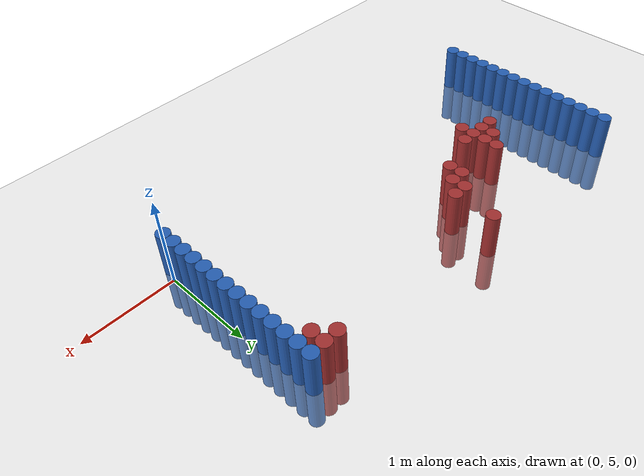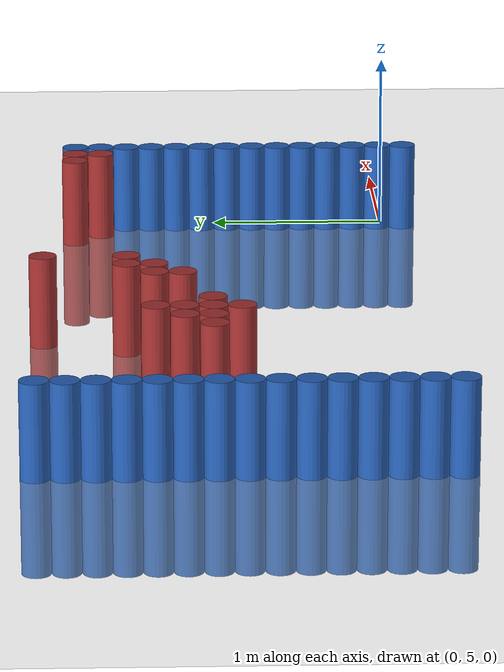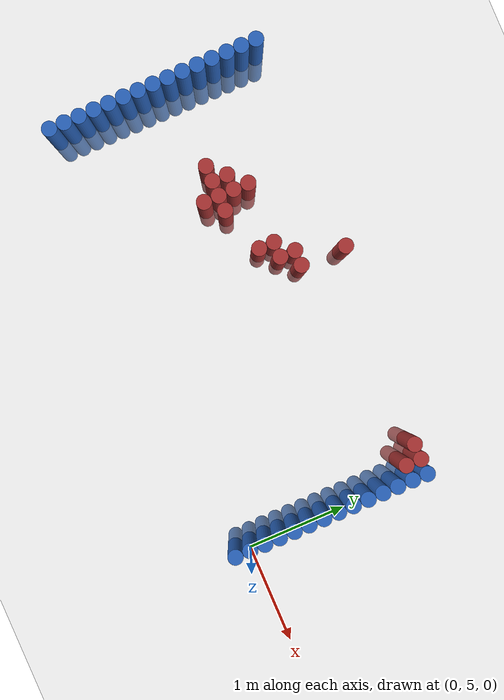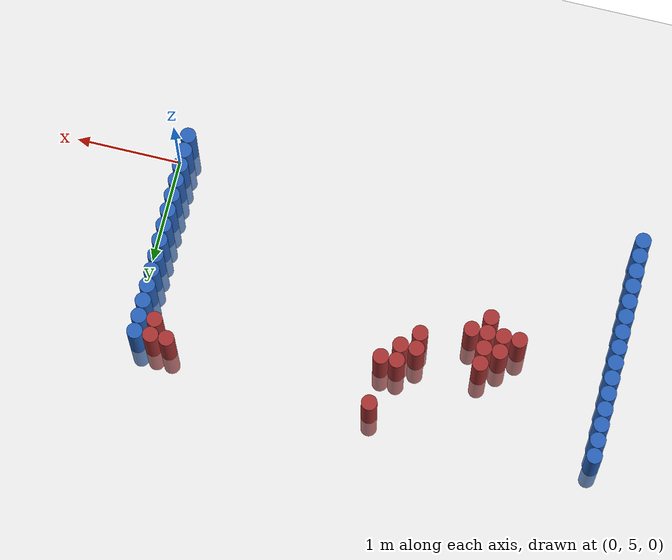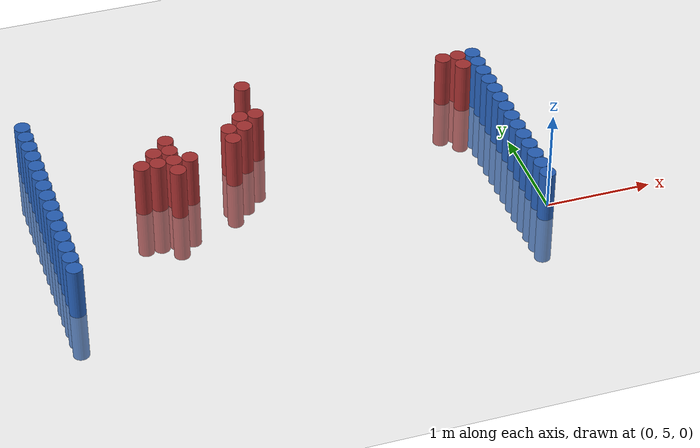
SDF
<sdf version="1.6">
 <world name="default">
  <model name="ground_plane">
   <static>1</static>
   <link name="link">
    <collision name="collision">
     <geometry><plane><normal>0 0 1</normal><size>100 100</size></plane></geometry>
     <surface><friction><ode><mu>100</mu><mu2>50</mu2></ode></friction></surface>
    </collision>
    <visual name="visual">
     <cast_shadows>0</cast_shadows>
     <geometry><plane><normal>0 0 1</normal><size>100 100</size></plane></geometry>
     <material>
      <script><uri>file://media/materials/scripts/gazebo.material</uri><name>Gazebo/Grey</name></script>
     </material>
    </visual>
   </link>
  </model>
  <model name="unit_cylinder_92">
   <static>1</static>
   <pose>-0.075000 4.875000 0.000000 0.000000 0.000000 0.000000</pose>
   <link name="link">
    <inertial>
     <mass>1</mass>
     <inertia><ixx>0.145833</ixx><ixy>0</ixy><ixz>0</ixz><iyy>0.145833</iyy><iyz>0</iyz><izz>0.125</izz></inertia>
    </inertial>
    <collision name="collision">
     <geometry><cylinder><radius>0.075000</radius><length>1</length></cylinder></geometry>
    </collision>
    <visual name="visual">
     <geometry><cylinder><radius>0.075000</radius><length>1</length></cylinder></geometry>
     <material>
      <ambient>0.152000 0.379000 0.720000 1</ambient>
      <diffuse>0.152000 0.379000 0.720000 1</diffuse>
     </material>
     <material>
      <script><name>Gazebo/Grey</name><uri>file://media/materials/scripts/gazebo.material</uri></script>
     </material>
    </visual>
   </link>
  </model>
  <model name="unit_cylinder_93">
   <static>1</static>
   <pose>-4.425000 4.875000 0.000000 0.000000 0.000000 0.000000</pose>
   <link name="link">
    <inertial>
     <mass>1</mass>
     <inertia><ixx>0.145833</ixx><ixy>0</ixy><ixz>0</ixz><iyy>0.145833</iyy><iyz>0</iyz><izz>0.125</izz></inertia>
    </inertial>
    <collision name="collision">
     <geometry><cylinder><radius>0.075000</radius><length>1</length></cylinder></geometry>
    </collision>
    <visual name="visual">
     <geometry><cylinder><radius>0.075000</radius><length>1</length></cylinder></geometry>
     <material>
      <ambient>0.152000 0.379000 0.720000 1</ambient>
      <diffuse>0.152000 0.379000 0.720000 1</diffuse>
     </material>
     <material>
      <script><name>Gazebo/Grey</name><uri>file://media/materials/scripts/gazebo.material</uri></script>
     </material>
    </visual>
   </link>
  </model>
  <model name="unit_cylinder_94">
   <static>1</static>
   <pose>-0.075000 5.025000 0.000000 0.000000 0.000000 0.000000</pose>
   <link name="link">
    <inertial>
     <mass>1</mass>
     <inertia><ixx>0.145833</ixx><ixy>0</ixy><ixz>0</ixz><iyy>0.145833</iyy><iyz>0</iyz><izz>0.125</izz></inertia>
    </inertial>
    <collision name="collision">
     <geometry><cylinder><radius>0.075000</radius><length>1</length></cylinder></geometry>
    </collision>
    <visual name="visual">
     <geometry><cylinder><radius>0.075000</radius><length>1</length></cylinder></geometry>
     <material>
      <ambient>0.152000 0.379000 0.720000 1</ambient>
      <diffuse>0.152000 0.379000 0.720000 1</diffuse>
     </material>
     <material>
      <script><name>Gazebo/Grey</name><uri>file://media/materials/scripts/gazebo.material</uri></script>
     </material>
    </visual>
   </link>
  </model>
  <model name="unit_cylinder_95">
   <static>1</static>
   <pose>-4.425000 5.025000 0.000000 0.000000 0.000000 0.000000</pose>
   <link name="link">
    <inertial>
     <mass>1</mass>
     <inertia><ixx>0.145833</ixx><ixy>0</ixy><ixz>0</ixz><iyy>0.145833</iyy><iyz>0</iyz><izz>0.125</izz></inertia>
    </inertial>
    <collision name="collision">
     <geometry><cylinder><radius>0.075000</radius><length>1</length></cylinder></geometry>
    </collision>
    <visual name="visual">
     <geometry><cylinder><radius>0.075000</radius><length>1</length></cylinder></geometry>
     <material>
      <ambient>0.152000 0.379000 0.720000 1</ambient>
      <diffuse>0.152000 0.379000 0.720000 1</diffuse>
     </material>
     <material>
      <script><name>Gazebo/Grey</name><uri>file://media/materials/scripts/gazebo.material</uri></script>
     </material>
    </visual>
   </link>
  </model>
  <model name="unit_cylinder_96">
   <static>1</static>
   <pose>-4.425000 5.175000 0.000000 0.000000 0.000000 0.000000</pose>
   <link name="link">
    <inertial>
     <mass>1</mass>
     <inertia><ixx>0.145833</ixx><ixy>0</ixy><ixz>0</ixz><iyy>0.145833</iyy><iyz>0</iyz><izz>0.125</izz></inertia>
    </inertial>
    <collision name="collision">
     <geometry><cylinder><radius>0.075000</radius><length>1</length></cylinder></geometry>
    </collision>
    <visual name="visual">
     <geometry><cylinder><radius>0.075000</radius><length>1</length></cylinder></geometry>
     <material>
      <ambient>0.152000 0.379000 0.720000 1</ambient>
      <diffuse>0.152000 0.379000 0.720000 1</diffuse>
     </material>
     <material>
      <script><name>Gazebo/Grey</name><uri>file://media/materials/scripts/gazebo.material</uri></script>
     </material>
    </visual>
   </link>
  </model>
  <model name="unit_cylinder_97">
   <static>1</static>
   <pose>-4.425000 5.325000 0.000000 0.000000 0.000000 0.000000</pose>
   <link name="link">
    <inertial>
     <mass>1</mass>
     <inertia><ixx>0.145833</ixx><ixy>0</ixy><ixz>0</ixz><iyy>0.145833</iyy><iyz>0</iyz><izz>0.125</izz></inertia>
    </inertial>
    <collision name="collision">
     <geometry><cylinder><radius>0.075000</radius><length>1</length></cylinder></geometry>
    </collision>
    <visual name="visual">
     <geometry><cylinder><radius>0.075000</radius><length>1</length></cylinder></geometry>
     <material>
      <ambient>0.152000 0.379000 0.720000 1</ambient>
      <diffuse>0.152000 0.379000 0.720000 1</diffuse>
     </material>
     <material>
      <script><name>Gazebo/Grey</name><uri>file://media/materials/scripts/gazebo.material</uri></script>
     </material>
    </visual>
   </link>
  </model>
  <model name="unit_cylinder_98">
   <static>1</static>
   <pose>-4.425000 5.475000 0.000000 0.000000 0.000000 0.000000</pose>
   <link name="link">
    <inertial>
     <mass>1</mass>
     <inertia><ixx>0.145833</ixx><ixy>0</ixy><ixz>0</ixz><iyy>0.145833</iyy><iyz>0</iyz><izz>0.125</izz></inertia>
    </inertial>
    <collision name="collision">
     <geometry><cylinder><radius>0.075000</radius><length>1</length></cylinder></geometry>
    </collision>
    <visual name="visual">
     <geometry><cylinder><radius>0.075000</radius><length>1</length></cylinder></geometry>
     <material>
      <ambient>0.152000 0.379000 0.720000 1</ambient>
      <diffuse>0.152000 0.379000 0.720000 1</diffuse>
     </material>
     <material>
      <script><name>Gazebo/Grey</name><uri>file://media/materials/scripts/gazebo.material</uri></script>
     </material>
    </visual>
   </link>
  </model>
  <model name="unit_cylinder_99">
   <static>1</static>
   <pose>-4.425000 5.625000 0.000000 0.000000 0.000000 0.000000</pose>
   <link name="link">
    <inertial>
     <mass>1</mass>
     <inertia><ixx>0.145833</ixx><ixy>0</ixy><ixz>0</ixz><iyy>0.145833</iyy><iyz>0</iyz><izz>0.125</izz></inertia>
    </inertial>
    <collision name="collision">
     <geometry><cylinder><radius>0.075000</radius><length>1</length></cylinder></geometry>
    </collision>
    <visual name="visual">
     <geometry><cylinder><radius>0.075000</radius><length>1</length></cylinder></geometry>
     <material>
      <ambient>0.152000 0.379000 0.720000 1</ambient>
      <diffuse>0.152000 0.379000 0.720000 1</diffuse>
     </material>
     <material>
      <script><name>Gazebo/Grey</name><uri>file://media/materials/scripts/gazebo.material</uri></script>
     </material>
    </visual>
   </link>
  </model>
  <model name="unit_cylinder_100">
   <static>1</static>
   <pose>-4.425000 5.775000 0.000000 0.000000 0.000000 0.000000</pose>
   <link name="link">
    <inertial>
     <mass>1</mass>
     <inertia><ixx>0.145833</ixx><ixy>0</ixy><ixz>0</ixz><iyy>0.145833</iyy><iyz>0</iyz><izz>0.125</izz></inertia>
    </inertial>
    <collision name="collision">
     <geometry><cylinder><radius>0.075000</radius><length>1</length></cylinder></geometry>
    </collision>
    <visual name="visual">
     <geometry><cylinder><radius>0.075000</radius><length>1</length></cylinder></geometry>
     <material>
      <ambient>0.152000 0.379000 0.720000 1</ambient>
      <diffuse>0.152000 0.379000 0.720000 1</diffuse>
     </material>
     <material>
      <script><name>Gazebo/Grey</name><uri>file://media/materials/scripts/gazebo.material</uri></script>
     </material>
    </visual>
   </link>
  </model>
  <model name="unit_cylinder_101">
   <static>1</static>
   <pose>-4.425000 5.925000 0.000000 0.000000 0.000000 0.000000</pose>
   <link name="link">
    <inertial>
     <mass>1</mass>
     <inertia><ixx>0.145833</ixx><ixy>0</ixy><ixz>0</ixz><iyy>0.145833</iyy><iyz>0</iyz><izz>0.125</izz></inertia>
    </inertial>
    <collision name="collision">
     <geometry><cylinder><radius>0.075000</radius><length>1</length></cylinder></geometry>
    </collision>
    <visual name="visual">
     <geometry><cylinder><radius>0.075000</radius><length>1</length></cylinder></geometry>
     <material>
      <ambient>0.152000 0.379000 0.720000 1</ambient>
      <diffuse>0.152000 0.379000 0.720000 1</diffuse>
     </material>
     <material>
      <script><name>Gazebo/Grey</name><uri>file://media/materials/scripts/gazebo.material</uri></script>
     </material>
    </visual>
   </link>
  </model>
  <model name="unit_cylinder_102">
   <static>1</static>
   <pose>-4.425000 6.075000 0.000000 0.000000 0.000000 0.000000</pose>
   <link name="link">
    <inertial>
     <mass>1</mass>
     <inertia><ixx>0.145833</ixx><ixy>0</ixy><ixz>0</ixz><iyy>0.145833</iyy><iyz>0</iyz><izz>0.125</izz></inertia>
    </inertial>
    <collision name="collision">
     <geometry><cylinder><radius>0.075000</radius><length>1</length></cylinder></geometry>
    </collision>
    <visual name="visual">
     <geometry><cylinder><radius>0.075000</radius><length>1</length></cylinder></geometry>
     <material>
      <ambient>0.152000 0.379000 0.720000 1</ambient>
      <diffuse>0.152000 0.379000 0.720000 1</diffuse>
     </material>
     <material>
      <script><name>Gazebo/Grey</name><uri>file://media/materials/scripts/gazebo.material</uri></script>
     </material>
    </visual>
   </link>
  </model>
  <model name="unit_cylinder_103">
   <static>1</static>
   <pose>-4.425000 6.225000 0.000000 0.000000 0.000000 0.000000</pose>
   <link name="link">
    <inertial>
     <mass>1</mass>
     <inertia><ixx>0.145833</ixx><ixy>0</ixy><ixz>0</ixz><iyy>0.145833</iyy><iyz>0</iyz><izz>0.125</izz></inertia>
    </inertial>
    <collision name="collision">
     <geometry><cylinder><radius>0.075000</radius><length>1</length></cylinder></geometry>
    </collision>
    <visual name="visual">
     <geometry><cylinder><radius>0.075000</radius><length>1</length></cylinder></geometry>
     <material>
      <ambient>0.152000 0.379000 0.720000 1</ambient>
      <diffuse>0.152000 0.379000 0.720000 1</diffuse>
     </material>
     <material>
      <script><name>Gazebo/Grey</name><uri>file://media/materials/scripts/gazebo.material</uri></script>
     </material>
    </visual>
   </link>
  </model>
  <model name="unit_cylinder_104">
   <static>1</static>
   <pose>-4.425000 6.375000 0.000000 0.000000 0.000000 0.000000</pose>
   <link name="link">
    <inertial>
     <mass>1</mass>
     <inertia><ixx>0.145833</ixx><ixy>0</ixy><ixz>0</ixz><iyy>0.145833</iyy><iyz>0</iyz><izz>0.125</izz></inertia>
    </inertial>
    <collision name="collision">
     <geometry><cylinder><radius>0.075000</radius><length>1</length></cylinder></geometry>
    </collision>
    <visual name="visual">
     <geometry><cylinder><radius>0.075000</radius><length>1</length></cylinder></geometry>
     <material>
      <ambient>0.152000 0.379000 0.720000 1</ambient>
      <diffuse>0.152000 0.379000 0.720000 1</diffuse>
     </material>
     <material>
      <script><name>Gazebo/Grey</name><uri>file://media/materials/scripts/gazebo.material</uri></script>
     </material>
    </visual>
   </link>
  </model>
  <model name="unit_cylinder_105">
   <static>1</static>
   <pose>-4.425000 6.525000 0.000000 0.000000 0.000000 0.000000</pose>
   <link name="link">
    <inertial>
     <mass>1</mass>
     <inertia><ixx>0.145833</ixx><ixy>0</ixy><ixz>0</ixz><iyy>0.145833</iyy><iyz>0</iyz><izz>0.125</izz></inertia>
    </inertial>
    <collision name="collision">
     <geometry><cylinder><radius>0.075000</radius><length>1</length></cylinder></geometry>
    </collision>
    <visual name="visual">
     <geometry><cylinder><radius>0.075000</radius><length>1</length></cylinder></geometry>
     <material>
      <ambient>0.152000 0.379000 0.720000 1</ambient>
      <diffuse>0.152000 0.379000 0.720000 1</diffuse>
     </material>
     <material>
      <script><name>Gazebo/Grey</name><uri>file://media/materials/scripts/gazebo.material</uri></script>
     </material>
    </visual>
   </link>
  </model>
  <model name="unit_cylinder_106">
   <static>1</static>
   <pose>-4.425000 6.675000 0.000000 0.000000 0.000000 0.000000</pose>
   <link name="link">
    <inertial>
     <mass>1</mass>
     <inertia><ixx>0.145833</ixx><ixy>0</ixy><ixz>0</ixz><iyy>0.145833</iyy><iyz>0</iyz><izz>0.125</izz></inertia>
    </inertial>
    <collision name="collision">
     <geometry><cylinder><radius>0.075000</radius><length>1</length></cylinder></geometry>
    </collision>
    <visual name="visual">
     <geometry><cylinder><radius>0.075000</radius><length>1</length></cylinder></geometry>
     <material>
      <ambient>0.152000 0.379000 0.720000 1</ambient>
      <diffuse>0.152000 0.379000 0.720000 1</diffuse>
     </material>
     <material>
      <script><name>Gazebo/Grey</name><uri>file://media/materials/scripts/gazebo.material</uri></script>
     </material>
    </visual>
   </link>
  </model>
  <model name="unit_cylinder_107">
   <static>1</static>
   <pose>-4.425000 6.825000 0.000000 0.000000 0.000000 0.000000</pose>
   <link name="link">
    <inertial>
     <mass>1</mass>
     <inertia><ixx>0.145833</ixx><ixy>0</ixy><ixz>0</ixz><iyy>0.145833</iyy><iyz>0</iyz><izz>0.125</izz></inertia>
    </inertial>
    <collision name="collision">
     <geometry><cylinder><radius>0.075000</radius><length>1</length></cylinder></geometry>
    </collision>
    <visual name="visual">
     <geometry><cylinder><radius>0.075000</radius><length>1</length></cylinder></geometry>
     <material>
      <ambient>0.152000 0.379000 0.720000 1</ambient>
      <diffuse>0.152000 0.379000 0.720000 1</diffuse>
     </material>
     <material>
      <script><name>Gazebo/Grey</name><uri>file://media/materials/scripts/gazebo.material</uri></script>
     </material>
    </visual>
   </link>
  </model>
  <model name="unit_cylinder_108">
   <static>1</static>
   <pose>-4.425000 6.975000 0.000000 0.000000 0.000000 0.000000</pose>
   <link name="link">
    <inertial>
     <mass>1</mass>
     <inertia><ixx>0.145833</ixx><ixy>0</ixy><ixz>0</ixz><iyy>0.145833</iyy><iyz>0</iyz><izz>0.125</izz></inertia>
    </inertial>
    <collision name="collision">
     <geometry><cylinder><radius>0.075000</radius><length>1</length></cylinder></geometry>
    </collision>
    <visual name="visual">
     <geometry><cylinder><radius>0.075000</radius><length>1</length></cylinder></geometry>
     <material>
      <ambient>0.152000 0.379000 0.720000 1</ambient>
      <diffuse>0.152000 0.379000 0.720000 1</diffuse>
     </material>
     <material>
      <script><name>Gazebo/Grey</name><uri>file://media/materials/scripts/gazebo.material</uri></script>
     </material>
    </visual>
   </link>
  </model>
  <model name="unit_cylinder_133">
   <static>1</static>
   <pose>-3.525000 6.075000 0.000000 0.000000 0.000000 0.000000</pose>
   <link name="link">
    <inertial>
     <mass>1</mass>
     <inertia><ixx>0.145833</ixx><ixy>0</ixy><ixz>0</ixz><iyy>0.145833</iyy><iyz>0</iyz><izz>0.125</izz></inertia>
    </inertial>
    <collision name="collision">
     <geometry><cylinder><radius>0.075000</radius><length>1</length></cylinder></geometry>
    </collision>
    <visual name="visual">
     <geometry><cylinder><radius>0.075000</radius><length>1</length></cylinder></geometry>
     <material>
      <ambient>0.648000 0.192000 0.192000 1</ambient>
      <diffuse>0.648000 0.192000 0.192000 1</diffuse>
     </material>
     <material>
      <script><name>Gazebo/Grey</name><uri>file://media/materials/scripts/gazebo.material</uri></script>
     </material>
    </visual>
   </link>
  </model>
  <model name="unit_cylinder_134">
   <static>1</static>
   <pose>-3.375000 6.075000 0.000000 0.000000 0.000000 0.000000</pose>
   <link name="link">
    <inertial>
     <mass>1</mass>
     <inertia><ixx>0.145833</ixx><ixy>0</ixy><ixz>0</ixz><iyy>0.145833</iyy><iyz>0</iyz><izz>0.125</izz></inertia>
    </inertial>
    <collision name="collision">
     <geometry><cylinder><radius>0.075000</radius><length>1</length></cylinder></geometry>
    </collision>
    <visual name="visual">
     <geometry><cylinder><radius>0.075000</radius><length>1</length></cylinder></geometry>
     <material>
      <ambient>0.648000 0.192000 0.192000 1</ambient>
      <diffuse>0.648000 0.192000 0.192000 1</diffuse>
     </material>
     <material>
      <script><name>Gazebo/Grey</name><uri>file://media/materials/scripts/gazebo.material</uri></script>
     </material>
    </visual>
   </link>
  </model>
  <model name="unit_cylinder_135">
   <static>1</static>
   <pose>-3.375000 6.225000 0.000000 0.000000 0.000000 0.000000</pose>
   <link name="link">
    <inertial>
     <mass>1</mass>
     <inertia><ixx>0.145833</ixx><ixy>0</ixy><ixz>0</ixz><iyy>0.145833</iyy><iyz>0</iyz><izz>0.125</izz></inertia>
    </inertial>
    <collision name="collision">
     <geometry><cylinder><radius>0.075000</radius><length>1</length></cylinder></geometry>
    </collision>
    <visual name="visual">
     <geometry><cylinder><radius>0.075000</radius><length>1</length></cylinder></geometry>
     <material>
      <ambient>0.648000 0.192000 0.192000 1</ambient>
      <diffuse>0.648000 0.192000 0.192000 1</diffuse>
     </material>
     <material>
      <script><name>Gazebo/Grey</name><uri>file://media/materials/scripts/gazebo.material</uri></script>
     </material>
    </visual>
   </link>
  </model>
  <model name="unit_cylinder_137">
   <static>1</static>
   <pose>-3.225000 5.925000 0.000000 0.000000 0.000000 0.000000</pose>
   <link name="link">
    <inertial>
     <mass>1</mass>
     <inertia><ixx>0.145833</ixx><ixy>0</ixy><ixz>0</ixz><iyy>0.145833</iyy><iyz>0</iyz><izz>0.125</izz></inertia>
    </inertial>
    <collision name="collision">
     <geometry><cylinder><radius>0.075000</radius><length>1</length></cylinder></geometry>
    </collision>
    <visual name="visual">
     <geometry><cylinder><radius>0.075000</radius><length>1</length></cylinder></geometry>
     <material>
      <ambient>0.648000 0.192000 0.192000 1</ambient>
      <diffuse>0.648000 0.192000 0.192000 1</diffuse>
     </material>
     <material>
      <script><name>Gazebo/Grey</name><uri>file://media/materials/scripts/gazebo.material</uri></script>
     </material>
    </visual>
   </link>
  </model>
  <model name="unit_cylinder_138">
   <static>1</static>
   <pose>-3.225000 6.075000 0.000000 0.000000 0.000000 0.000000</pose>
   <link name="link">
    <inertial>
     <mass>1</mass>
     <inertia><ixx>0.145833</ixx><ixy>0</ixy><ixz>0</ixz><iyy>0.145833</iyy><iyz>0</iyz><izz>0.125</izz></inertia>
    </inertial>
    <collision name="collision">
     <geometry><cylinder><radius>0.075000</radius><length>1</length></cylinder></geometry>
    </collision>
    <visual name="visual">
     <geometry><cylinder><radius>0.075000</radius><length>1</length></cylinder></geometry>
     <material>
      <ambient>0.648000 0.192000 0.192000 1</ambient>
      <diffuse>0.648000 0.192000 0.192000 1</diffuse>
     </material>
     <material>
      <script><name>Gazebo/Grey</name><uri>file://media/materials/scripts/gazebo.material</uri></script>
     </material>
    </visual>
   </link>
  </model>
  <model name="unit_cylinder_139">
   <static>1</static>
   <pose>-3.225000 6.225000 0.000000 0.000000 0.000000 0.000000</pose>
   <link name="link">
    <inertial>
     <mass>1</mass>
     <inertia><ixx>0.145833</ixx><ixy>0</ixy><ixz>0</ixz><iyy>0.145833</iyy><iyz>0</iyz><izz>0.125</izz></inertia>
    </inertial>
    <collision name="collision">
     <geometry><cylinder><radius>0.075000</radius><length>1</length></cylinder></geometry>
    </collision>
    <visual name="visual">
     <geometry><cylinder><radius>0.075000</radius><length>1</length></cylinder></geometry>
     <material>
      <ambient>0.648000 0.192000 0.192000 1</ambient>
      <diffuse>0.648000 0.192000 0.192000 1</diffuse>
     </material>
     <material>
      <script><name>Gazebo/Grey</name><uri>file://media/materials/scripts/gazebo.material</uri></script>
     </material>
    </visual>
   </link>
  </model>
  <model name="unit_cylinder_140">
   <static>1</static>
   <pose>-3.225000 6.375000 0.000000 0.000000 0.000000 0.000000</pose>
   <link name="link">
    <inertial>
     <mass>1</mass>
     <inertia><ixx>0.145833</ixx><ixy>0</ixy><ixz>0</ixz><iyy>0.145833</iyy><iyz>0</iyz><izz>0.125</izz></inertia>
    </inertial>
    <collision name="collision">
     <geometry><cylinder><radius>0.075000</radius><length>1</length></cylinder></geometry>
    </collision>
    <visual name="visual">
     <geometry><cylinder><radius>0.075000</radius><length>1</length></cylinder></geometry>
     <material>
      <ambient>0.648000 0.192000 0.192000 1</ambient>
      <diffuse>0.648000 0.192000 0.192000 1</diffuse>
     </material>
     <material>
      <script><name>Gazebo/Grey</name><uri>file://media/materials/scripts/gazebo.material</uri></script>
     </material>
    </visual>
   </link>
  </model>
  <model name="unit_cylinder_143">
   <static>1</static>
   <pose>-3.075000 6.075000 0.000000 0.000000 0.000000 0.000000</pose>
   <link name="link">
    <inertial>
     <mass>1</mass>
     <inertia><ixx>0.145833</ixx><ixy>0</ixy><ixz>0</ixz><iyy>0.145833</iyy><iyz>0</iyz><izz>0.125</izz></inertia>
    </inertial>
    <collision name="collision">
     <geometry><cylinder><radius>0.075000</radius><length>1</length></cylinder></geometry>
    </collision>
    <visual name="visual">
     <geometry><cylinder><radius>0.075000</radius><length>1</length></cylinder></geometry>
     <material>
      <ambient>0.648000 0.192000 0.192000 1</ambient>
      <diffuse>0.648000 0.192000 0.192000 1</diffuse>
     </material>
     <material>
      <script><name>Gazebo/Grey</name><uri>file://media/materials/scripts/gazebo.material</uri></script>
     </material>
    </visual>
   </link>
  </model>
  <model name="unit_cylinder_147">
   <static>1</static>
   <pose>-2.625000 6.225000 0.000000 0.000000 0.000000 0.000000</pose>
   <link name="link">
    <inertial>
     <mass>1</mass>
     <inertia><ixx>0.145833</ixx><ixy>0</ixy><ixz>0</ixz><iyy>0.145833</iyy><iyz>0</iyz><izz>0.125</izz></inertia>
    </inertial>
    <collision name="collision">
     <geometry><cylinder><radius>0.075000</radius><length>1</length></cylinder></geometry>
    </collision>
    <visual name="visual">
     <geometry><cylinder><radius>0.075000</radius><length>1</length></cylinder></geometry>
     <material>
      <ambient>0.648000 0.192000 0.192000 1</ambient>
      <diffuse>0.648000 0.192000 0.192000 1</diffuse>
     </material>
     <material>
      <script><name>Gazebo/Grey</name><uri>file://media/materials/scripts/gazebo.material</uri></script>
     </material>
    </visual>
   </link>
  </model>
  <model name="unit_cylinder_148">
   <static>1</static>
   <pose>-2.625000 6.375000 0.000000 0.000000 0.000000 0.000000</pose>
   <link name="link">
    <inertial>
     <mass>1</mass>
     <inertia><ixx>0.145833</ixx><ixy>0</ixy><ixz>0</ixz><iyy>0.145833</iyy><iyz>0</iyz><izz>0.125</izz></inertia>
    </inertial>
    <collision name="collision">
     <geometry><cylinder><radius>0.075000</radius><length>1</length></cylinder></geometry>
    </collision>
    <visual name="visual">
     <geometry><cylinder><radius>0.075000</radius><length>1</length></cylinder></geometry>
     <material>
      <ambient>0.648000 0.192000 0.192000 1</ambient>
      <diffuse>0.648000 0.192000 0.192000 1</diffuse>
     </material>
     <material>
      <script><name>Gazebo/Grey</name><uri>file://media/materials/scripts/gazebo.material</uri></script>
     </material>
    </visual>
   </link>
  </model>
  <model name="unit_cylinder_153">
   <static>1</static>
   <pose>-2.475000 6.375000 0.000000 0.000000 0.000000 0.000000</pose>
   <link name="link">
    <inertial>
     <mass>1</mass>
     <inertia><ixx>0.145833</ixx><ixy>0</ixy><ixz>0</ixz><iyy>0.145833</iyy><iyz>0</iyz><izz>0.125</izz></inertia>
    </inertial>
    <collision name="collision">
     <geometry><cylinder><radius>0.075000</radius><length>1</length></cylinder></geometry>
    </collision>
    <visual name="visual">
     <geometry><cylinder><radius>0.075000</radius><length>1</length></cylinder></geometry>
     <material>
      <ambient>0.648000 0.192000 0.192000 1</ambient>
      <diffuse>0.648000 0.192000 0.192000 1</diffuse>
     </material>
     <material>
      <script><name>Gazebo/Grey</name><uri>file://media/materials/scripts/gazebo.material</uri></script>
     </material>
    </visual>
   </link>
  </model>
  <model name="unit_cylinder_154">
   <static>1</static>
   <pose>-2.475000 6.525000 0.000000 0.000000 0.000000 0.000000</pose>
   <link name="link">
    <inertial>
     <mass>1</mass>
     <inertia><ixx>0.145833</ixx><ixy>0</ixy><ixz>0</ixz><iyy>0.145833</iyy><iyz>0</iyz><izz>0.125</izz></inertia>
    </inertial>
    <collision name="collision">
     <geometry><cylinder><radius>0.075000</radius><length>1</length></cylinder></geometry>
    </collision>
    <visual name="visual">
     <geometry><cylinder><radius>0.075000</radius><length>1</length></cylinder></geometry>
     <material>
      <ambient>0.648000 0.192000 0.192000 1</ambient>
      <diffuse>0.648000 0.192000 0.192000 1</diffuse>
     </material>
     <material>
      <script><name>Gazebo/Grey</name><uri>file://media/materials/scripts/gazebo.material</uri></script>
     </material>
    </visual>
   </link>
  </model>
  <model name="unit_cylinder_160">
   <static>1</static>
   <pose>-2.325000 6.525000 0.000000 0.000000 0.000000 0.000000</pose>
   <link name="link">
    <inertial>
     <mass>1</mass>
     <inertia><ixx>0.145833</ixx><ixy>0</ixy><ixz>0</ixz><iyy>0.145833</iyy><iyz>0</iyz><izz>0.125</izz></inertia>
    </inertial>
    <collision name="collision">
     <geometry><cylinder><radius>0.075000</radius><length>1</length></cylinder></geometry>
    </collision>
    <visual name="visual">
     <geometry><cylinder><radius>0.075000</radius><length>1</length></cylinder></geometry>
     <material>
      <ambient>0.648000 0.192000 0.192000 1</ambient>
      <diffuse>0.648000 0.192000 0.192000 1</diffuse>
     </material>
     <material>
      <script><name>Gazebo/Grey</name><uri>file://media/materials/scripts/gazebo.material</uri></script>
     </material>
    </visual>
   </link>
  </model>
  <model name="unit_cylinder_161">
   <static>1</static>
   <pose>-2.325000 6.975000 0.000000 0.000000 0.000000 0.000000</pose>
   <link name="link">
    <inertial>
     <mass>1</mass>
     <inertia><ixx>0.145833</ixx><ixy>0</ixy><ixz>0</ixz><iyy>0.145833</iyy><iyz>0</iyz><izz>0.125</izz></inertia>
    </inertial>
    <collision name="collision">
     <geometry><cylinder><radius>0.075000</radius><length>1</length></cylinder></geometry>
    </collision>
    <visual name="visual">
     <geometry><cylinder><radius>0.075000</radius><length>1</length></cylinder></geometry>
     <material>
      <ambient>0.648000 0.192000 0.192000 1</ambient>
      <diffuse>0.648000 0.192000 0.192000 1</diffuse>
     </material>
     <material>
      <script><name>Gazebo/Grey</name><uri>file://media/materials/scripts/gazebo.material</uri></script>
     </material>
    </visual>
   </link>
  </model>
  <model name="unit_cylinder_181">
   <static>1</static>
   <pose>-0.375000 6.825000 0.000000 0.000000 0.000000 0.000000</pose>
   <link name="link">
    <inertial>
     <mass>1</mass>
     <inertia><ixx>0.145833</ixx><ixy>0</ixy><ixz>0</ixz><iyy>0.145833</iyy><iyz>0</iyz><izz>0.125</izz></inertia>
    </inertial>
    <collision name="collision">
     <geometry><cylinder><radius>0.075000</radius><length>1</length></cylinder></geometry>
    </collision>
    <visual name="visual">
     <geometry><cylinder><radius>0.075000</radius><length>1</length></cylinder></geometry>
     <material>
      <ambient>0.648000 0.192000 0.192000 1</ambient>
      <diffuse>0.648000 0.192000 0.192000 1</diffuse>
     </material>
     <material>
      <script><name>Gazebo/Grey</name><uri>file://media/materials/scripts/gazebo.material</uri></script>
     </material>
    </visual>
   </link>
  </model>
  <model name="unit_cylinder_189">
   <static>1</static>
   <pose>-0.225000 6.675000 0.000000 0.000000 0.000000 0.000000</pose>
   <link name="link">
    <inertial>
     <mass>1</mass>
     <inertia><ixx>0.145833</ixx><ixy>0</ixy><ixz>0</ixz><iyy>0.145833</iyy><iyz>0</iyz><izz>0.125</izz></inertia>
    </inertial>
    <collision name="collision">
     <geometry><cylinder><radius>0.075000</radius><length>1</length></cylinder></geometry>
    </collision>
    <visual name="visual">
     <geometry><cylinder><radius>0.075000</radius><length>1</length></cylinder></geometry>
     <material>
      <ambient>0.648000 0.192000 0.192000 1</ambient>
      <diffuse>0.648000 0.192000 0.192000 1</diffuse>
     </material>
     <material>
      <script><name>Gazebo/Grey</name><uri>file://media/materials/scripts/gazebo.material</uri></script>
     </material>
    </visual>
   </link>
  </model>
  <model name="unit_cylinder_190">
   <static>1</static>
   <pose>-0.225000 6.825000 0.000000 0.000000 0.000000 0.000000</pose>
   <link name="link">
    <inertial>
     <mass>1</mass>
     <inertia><ixx>0.145833</ixx><ixy>0</ixy><ixz>0</ixz><iyy>0.145833</iyy><iyz>0</iyz><izz>0.125</izz></inertia>
    </inertial>
    <collision name="collision">
     <geometry><cylinder><radius>0.075000</radius><length>1</length></cylinder></geometry>
    </collision>
    <visual name="visual">
     <geometry><cylinder><radius>0.075000</radius><length>1</length></cylinder></geometry>
     <material>
      <ambient>0.648000 0.192000 0.192000 1</ambient>
      <diffuse>0.648000 0.192000 0.192000 1</diffuse>
     </material>
     <material>
      <script><name>Gazebo/Grey</name><uri>file://media/materials/scripts/gazebo.material</uri></script>
     </material>
    </visual>
   </link>
  </model>
  <model name="unit_cylinder_200">
   <static>1</static>
   <pose>-0.075000 5.175000 0.000000 0.000000 0.000000 0.000000</pose>
   <link name="link">
    <inertial>
     <mass>1</mass>
     <inertia><ixx>0.145833</ixx><ixy>0</ixy><ixz>0</ixz><iyy>0.145833</iyy><iyz>0</iyz><izz>0.125</izz></inertia>
    </inertial>
    <collision name="collision">
     <geometry><cylinder><radius>0.075000</radius><length>1</length></cylinder></geometry>
    </collision>
    <visual name="visual">
     <geometry><cylinder><radius>0.075000</radius><length>1</length></cylinder></geometry>
     <material>
      <ambient>0.152000 0.379000 0.720000 1</ambient>
      <diffuse>0.152000 0.379000 0.720000 1</diffuse>
     </material>
     <material>
      <script><name>Gazebo/Grey</name><uri>file://media/materials/scripts/gazebo.material</uri></script>
     </material>
    </visual>
   </link>
  </model>
  <model name="unit_cylinder_201">
   <static>1</static>
   <pose>-0.075000 5.325000 0.000000 0.000000 0.000000 0.000000</pose>
   <link name="link">
    <inertial>
     <mass>1</mass>
     <inertia><ixx>0.145833</ixx><ixy>0</ixy><ixz>0</ixz><iyy>0.145833</iyy><iyz>0</iyz><izz>0.125</izz></inertia>
    </inertial>
    <collision name="collision">
     <geometry><cylinder><radius>0.075000</radius><length>1</length></cylinder></geometry>
    </collision>
    <visual name="visual">
     <geometry><cylinder><radius>0.075000</radius><length>1</length></cylinder></geometry>
     <material>
      <ambient>0.152000 0.379000 0.720000 1</ambient>
      <diffuse>0.152000 0.379000 0.720000 1</diffuse>
     </material>
     <material>
      <script><name>Gazebo/Grey</name><uri>file://media/materials/scripts/gazebo.material</uri></script>
     </material>
    </visual>
   </link>
  </model>
  <model name="unit_cylinder_202">
   <static>1</static>
   <pose>-0.075000 5.475000 0.000000 0.000000 0.000000 0.000000</pose>
   <link name="link">
    <inertial>
     <mass>1</mass>
     <inertia><ixx>0.145833</ixx><ixy>0</ixy><ixz>0</ixz><iyy>0.145833</iyy><iyz>0</iyz><izz>0.125</izz></inertia>
    </inertial>
    <collision name="collision">
     <geometry><cylinder><radius>0.075000</radius><length>1</length></cylinder></geometry>
    </collision>
    <visual name="visual">
     <geometry><cylinder><radius>0.075000</radius><length>1</length></cylinder></geometry>
     <material>
      <ambient>0.152000 0.379000 0.720000 1</ambient>
      <diffuse>0.152000 0.379000 0.720000 1</diffuse>
     </material>
     <material>
      <script><name>Gazebo/Grey</name><uri>file://media/materials/scripts/gazebo.material</uri></script>
     </material>
    </visual>
   </link>
  </model>
  <model name="unit_cylinder_203">
   <static>1</static>
   <pose>-0.075000 5.625000 0.000000 0.000000 0.000000 0.000000</pose>
   <link name="link">
    <inertial>
     <mass>1</mass>
     <inertia><ixx>0.145833</ixx><ixy>0</ixy><ixz>0</ixz><iyy>0.145833</iyy><iyz>0</iyz><izz>0.125</izz></inertia>
    </inertial>
    <collision name="collision">
     <geometry><cylinder><radius>0.075000</radius><length>1</length></cylinder></geometry>
    </collision>
    <visual name="visual">
     <geometry><cylinder><radius>0.075000</radius><length>1</length></cylinder></geometry>
     <material>
      <ambient>0.152000 0.379000 0.720000 1</ambient>
      <diffuse>0.152000 0.379000 0.720000 1</diffuse>
     </material>
     <material>
      <script><name>Gazebo/Grey</name><uri>file://media/materials/scripts/gazebo.material</uri></script>
     </material>
    </visual>
   </link>
  </model>
  <model name="unit_cylinder_204">
   <static>1</static>
   <pose>-0.075000 5.775000 0.000000 0.000000 0.000000 0.000000</pose>
   <link name="link">
    <inertial>
     <mass>1</mass>
     <inertia><ixx>0.145833</ixx><ixy>0</ixy><ixz>0</ixz><iyy>0.145833</iyy><iyz>0</iyz><izz>0.125</izz></inertia>
    </inertial>
    <collision name="collision">
     <geometry><cylinder><radius>0.075000</radius><length>1</length></cylinder></geometry>
    </collision>
    <visual name="visual">
     <geometry><cylinder><radius>0.075000</radius><length>1</length></cylinder></geometry>
     <material>
      <ambient>0.152000 0.379000 0.720000 1</ambient>
      <diffuse>0.152000 0.379000 0.720000 1</diffuse>
     </material>
     <material>
      <script><name>Gazebo/Grey</name><uri>file://media/materials/scripts/gazebo.material</uri></script>
     </material>
    </visual>
   </link>
  </model>
  <model name="unit_cylinder_205">
   <static>1</static>
   <pose>-0.075000 5.925000 0.000000 0.000000 0.000000 0.000000</pose>
   <link name="link">
    <inertial>
     <mass>1</mass>
     <inertia><ixx>0.145833</ixx><ixy>0</ixy><ixz>0</ixz><iyy>0.145833</iyy><iyz>0</iyz><izz>0.125</izz></inertia>
    </inertial>
    <collision name="collision">
     <geometry><cylinder><radius>0.075000</radius><length>1</length></cylinder></geometry>
    </collision>
    <visual name="visual">
     <geometry><cylinder><radius>0.075000</radius><length>1</length></cylinder></geometry>
     <material>
      <ambient>0.152000 0.379000 0.720000 1</ambient>
      <diffuse>0.152000 0.379000 0.720000 1</diffuse>
     </material>
     <material>
      <script><name>Gazebo/Grey</name><uri>file://media/materials/scripts/gazebo.material</uri></script>
     </material>
    </visual>
   </link>
  </model>
  <model name="unit_cylinder_206">
   <static>1</static>
   <pose>-0.075000 6.075000 0.000000 0.000000 0.000000 0.000000</pose>
   <link name="link">
    <inertial>
     <mass>1</mass>
     <inertia><ixx>0.145833</ixx><ixy>0</ixy><ixz>0</ixz><iyy>0.145833</iyy><iyz>0</iyz><izz>0.125</izz></inertia>
    </inertial>
    <collision name="collision">
     <geometry><cylinder><radius>0.075000</radius><length>1</length></cylinder></geometry>
    </collision>
    <visual name="visual">
     <geometry><cylinder><radius>0.075000</radius><length>1</length></cylinder></geometry>
     <material>
      <ambient>0.152000 0.379000 0.720000 1</ambient>
      <diffuse>0.152000 0.379000 0.720000 1</diffuse>
     </material>
     <material>
      <script><name>Gazebo/Grey</name><uri>file://media/materials/scripts/gazebo.material</uri></script>
     </material>
    </visual>
   </link>
  </model>
  <model name="unit_cylinder_207">
   <static>1</static>
   <pose>-0.075000 6.225000 0.000000 0.000000 0.000000 0.000000</pose>
   <link name="link">
    <inertial>
     <mass>1</mass>
     <inertia><ixx>0.145833</ixx><ixy>0</ixy><ixz>0</ixz><iyy>0.145833</iyy><iyz>0</iyz><izz>0.125</izz></inertia>
    </inertial>
    <collision name="collision">
     <geometry><cylinder><radius>0.075000</radius><length>1</length></cylinder></geometry>
    </collision>
    <visual name="visual">
     <geometry><cylinder><radius>0.075000</radius><length>1</length></cylinder></geometry>
     <material>
      <ambient>0.152000 0.379000 0.720000 1</ambient>
      <diffuse>0.152000 0.379000 0.720000 1</diffuse>
     </material>
     <material>
      <script><name>Gazebo/Grey</name><uri>file://media/materials/scripts/gazebo.material</uri></script>
     </material>
    </visual>
   </link>
  </model>
  <model name="unit_cylinder_208">
   <static>1</static>
   <pose>-0.075000 6.375000 0.000000 0.000000 0.000000 0.000000</pose>
   <link name="link">
    <inertial>
     <mass>1</mass>
     <inertia><ixx>0.145833</ixx><ixy>0</ixy><ixz>0</ixz><iyy>0.145833</iyy><iyz>0</iyz><izz>0.125</izz></inertia>
    </inertial>
    <collision name="collision">
     <geometry><cylinder><radius>0.075000</radius><length>1</length></cylinder></geometry>
    </collision>
    <visual name="visual">
     <geometry><cylinder><radius>0.075000</radius><length>1</length></cylinder></geometry>
     <material>
      <ambient>0.152000 0.379000 0.720000 1</ambient>
      <diffuse>0.152000 0.379000 0.720000 1</diffuse>
     </material>
     <material>
      <script><name>Gazebo/Grey</name><uri>file://media/materials/scripts/gazebo.material</uri></script>
     </material>
    </visual>
   </link>
  </model>
  <model name="unit_cylinder_209">
   <static>1</static>
   <pose>-0.075000 6.525000 0.000000 0.000000 0.000000 0.000000</pose>
   <link name="link">
    <inertial>
     <mass>1</mass>
     <inertia><ixx>0.145833</ixx><ixy>0</ixy><ixz>0</ixz><iyy>0.145833</iyy><iyz>0</iyz><izz>0.125</izz></inertia>
    </inertial>
    <collision name="collision">
     <geometry><cylinder><radius>0.075000</radius><length>1</length></cylinder></geometry>
    </collision>
    <visual name="visual">
     <geometry><cylinder><radius>0.075000</radius><length>1</length></cylinder></geometry>
     <material>
      <ambient>0.152000 0.379000 0.720000 1</ambient>
      <diffuse>0.152000 0.379000 0.720000 1</diffuse>
     </material>
     <material>
      <script><name>Gazebo/Grey</name><uri>file://media/materials/scripts/gazebo.material</uri></script>
     </material>
    </visual>
   </link>
  </model>
  <model name="unit_cylinder_210">
   <static>1</static>
   <pose>-0.075000 6.675000 0.000000 0.000000 0.000000 0.000000</pose>
   <link name="link">
    <inertial>
     <mass>1</mass>
     <inertia><ixx>0.145833</ixx><ixy>0</ixy><ixz>0</ixz><iyy>0.145833</iyy><iyz>0</iyz><izz>0.125</izz></inertia>
    </inertial>
    <collision name="collision">
     <geometry><cylinder><radius>0.075000</radius><length>1</length></cylinder></geometry>
    </collision>
    <visual name="visual">
     <geometry><cylinder><radius>0.075000</radius><length>1</length></cylinder></geometry>
     <material>
      <ambient>0.152000 0.379000 0.720000 1</ambient>
      <diffuse>0.152000 0.379000 0.720000 1</diffuse>
     </material>
     <material>
      <script><name>Gazebo/Grey</name><uri>file://media/materials/scripts/gazebo.material</uri></script>
     </material>
    </visual>
   </link>
  </model>
  <model name="unit_cylinder_211">
   <static>1</static>
   <pose>-0.075000 6.825000 0.000000 0.000000 0.000000 0.000000</pose>
   <link name="link">
    <inertial>
     <mass>1</mass>
     <inertia><ixx>0.145833</ixx><ixy>0</ixy><ixz>0</ixz><iyy>0.145833</iyy><iyz>0</iyz><izz>0.125</izz></inertia>
    </inertial>
    <collision name="collision">
     <geometry><cylinder><radius>0.075000</radius><length>1</length></cylinder></geometry>
    </collision>
    <visual name="visual">
     <geometry><cylinder><radius>0.075000</radius><length>1</length></cylinder></geometry>
     <material>
      <ambient>0.152000 0.379000 0.720000 1</ambient>
      <diffuse>0.152000 0.379000 0.720000 1</diffuse>
     </material>
     <material>
      <script><name>Gazebo/Grey</name><uri>file://media/materials/scripts/gazebo.material</uri></script>
     </material>
    </visual>
   </link>
  </model>
 </world>
</sdf>
